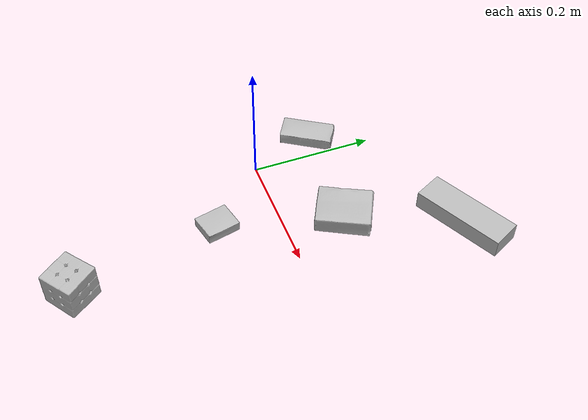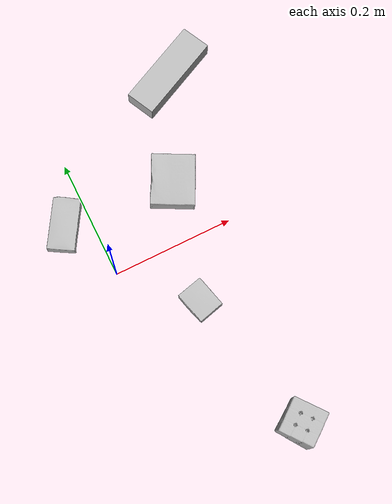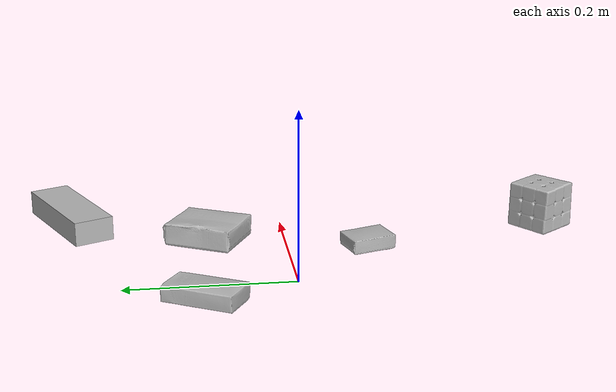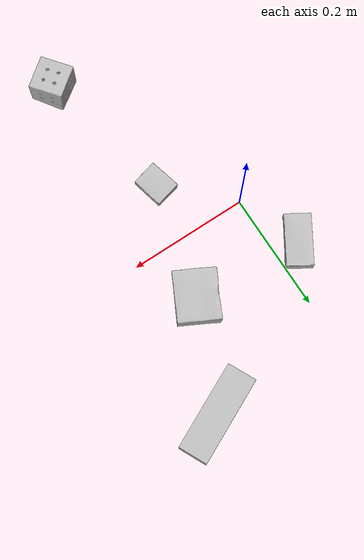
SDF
<sdf version="1.4">
  <world name="default">
    <light name="light1" type="point">
      <pose>0 0 1 0 0 0</pose>
      <diffuse>3 3 3 1</diffuse>
      <specular>3 3 3 1</specular>
    </light>
    <light name="light2" type="point">
      <pose>0 0.5 2 0 0 0</pose>
      <diffuse>1 1 1 1</diffuse>
      <specular>1 1 1 1</specular>
    </light>
    <light name="light3" type="point">
      <pose>0 0.5 2 0 0 0</pose>
      <diffuse>3 3 3 1</diffuse>
      <specular>3 3 3 1</specular>
    </light>
    <scene>
      <ambient>0.7 0.7 0.7</ambient>
    </scene>
    <model name="box1">
      <link name="link_box1">
        <collision name="default">
          <geometry>
            <mesh>
              <uri>model://sugar_box/collision_meshes/collision.obj</uri>
              <scale>0.5 0.5 0.5</scale>
            </mesh>
          </geometry>
          <surface>
            <friction>
              <ode>
                <mu>0.5</mu>
                <mu2>0.5</mu2>
              </ode>
            </friction>
          <contact>
        <ode>
            <max_vel>0</max_vel>
            <min_depth>0.0001</min_depth>
            <kp>1e8</kp>
        </ode>
    </contact></surface>
        </collision>
        <visual name="default">
          <geometry>
            <mesh>
              <uri>model://sugar_box/visual_meshes/visual.dae</uri>
              <scale>0.5 0.5 0.5</scale>
            </mesh>
          </geometry>
        </visual>
        <inertial>
          <mass>0.06211651861667633</mass>
          <pose>0.0005171863595023751 1.9245546354795806e-05 -0.00018182402709499002 -0.00040462630054681676 0.0010506634057476226 0.0026153787889456807</pose>
          <inertia>
            <ixx>1.2938825e-05</ixx>
            <iyy>4.1820942e-05</iyy>
            <izz>5.0064667e-05</izz>
            <ixy>0</ixy>
            <ixz>0</ixz>
            <iyz>0</iyz>
          </inertia>
        </inertial>
      </link>
      <pose>-0.04105877876281738 0.1077866181731224 0.011399304494261742 0.0007752741884313287 -0.023433240107461978 -2.1214211542745463</pose>
    </model>
    <model name="box2">
      <link name="link_box2">
        <collision name="default">
          <geometry>
            <mesh>
              <uri>model://rubiks_cube/collision_meshes/collision.obj</uri>
              <scale>1.0 1.0 1.0</scale>
            </mesh>
          </geometry>
          <surface>
            <friction>
              <ode>
                <mu>0.5</mu>
                <mu2>0.5</mu2>
              </ode>
            </friction>
          <contact>
        <ode>
            <max_vel>0</max_vel>
            <min_depth>0.0001</min_depth>
            <kp>1e8</kp>
        </ode>
    </contact></surface>
        </collision>
        <visual name="default">
          <geometry>
            <mesh>
              <uri>model://rubiks_cube/visual_meshes/visual.dae</uri>
              <scale>1.0 1.0 1.0</scale>
            </mesh>
          </geometry>
        </visual>
        <inertial>
          <mass>0.2700360119342804</mass>
          <pose>2.6721041649580002e-05 5.256967051536776e-05 -7.264316536748083e-06 -0.05467324422766238 -0.0981422115654675 -0.034454566623261795</pose>
          <inertia>
            <ixx>0.00014921304</ixx>
            <iyy>0.00014851718</iyy>
            <izz>0.00015044949</izz>
            <ixy>0</ixy>
            <ixz>0</ixz>
            <iyz>0</iyz>
          </inertia>
        </inertial>
      </link>
      <pose>0.14966124296188354 -0.3334393799304962 0.028678974136710167 -3.1446795052777677e-06 -9.2890863237743e-07 2.2154173384511244</pose>
    </model>
    <model name="box3">
      <link name="link_box3">
        <collision name="default">
          <geometry>
            <mesh>
              <uri>model://jenga/collision_meshes/collision.obj</uri>
              <scale>1.0 1.0 1.0</scale>
            </mesh>
          </geometry>
          <surface>
            <friction>
              <ode>
                <mu>0.5</mu>
                <mu2>0.5</mu2>
              </ode>
            </friction>
          <contact>
        <ode>
            <max_vel>0</max_vel>
            <min_depth>0.0001</min_depth>
            <kp>1e8</kp>
        </ode>
    </contact></surface>
        </collision>
        <visual name="default">
          <geometry>
            <mesh>
              <uri>model://jenga/visual_meshes/visual.dae</uri>
              <scale>1.0 1.0 1.0</scale>
            </mesh>
          </geometry>
        </visual>
        <inertial>
          <mass>0.12586519122123718</mass>
          <pose>-2.502855807051674e-07 -0.00010250010382151231 -4.0923401684267446e-05 0.0 -7.342154049184251e-07 0.0</pose>
          <inertia>
            <ixx>3.482995e-05</ixx>
            <iyy>0.0002360068</iyy>
            <izz>0.00025195733</izz>
            <ixy>0</ixy>
            <ixz>0</ixz>
            <iyz>0</iyz>
          </inertia>
        </inertial>
      </link>
      <pose>0.22277553379535675 0.2679692208766937 0.01499999687075615 2.1000442092727243e-08 -1.0016133805435987e-09 0.4505064731839955</pose>
    </model>
    <model name="box4">
      <link name="link_box4">
        <collision name="default">
          <geometry>
            <mesh>
              <uri>model://gelatin_box/collision_meshes/collision.obj</uri>
              <scale>1.0 1.0 1.0</scale>
            </mesh>
          </geometry>
          <surface>
            <friction>
              <ode>
                <mu>0.5</mu>
                <mu2>0.5</mu2>
              </ode>
            </friction>
          <contact>
        <ode>
            <max_vel>0</max_vel>
            <min_depth>0.0001</min_depth>
            <kp>1e8</kp>
        </ode>
    </contact></surface>
        </collision>
        <visual name="default">
          <geometry>
            <mesh>
              <uri>model://gelatin_box/visual_meshes/visual.dae</uri>
              <scale>1.0 1.0 1.0</scale>
            </mesh>
          </geometry>
        </visual>
        <inertial>
          <mass>0.0925464928150177</mass>
          <pose>0.0004319618456065655 0.00011156871914863586 -0.0003640321083366871 -0.0010503719798216618 -0.004755819622564704 0.01644055760929568</pose>
          <inertia>
            <ixx>6.533027e-05</ixx>
            <iyy>4.6665074e-05</iyy>
            <izz>9.9447236e-05</izz>
            <ixy>0</ixy>
            <ixz>0</ixz>
            <iyz>0</iyz>
          </inertia>
        </inertial>
      </link>
      <pose>0.14675752818584442 0.09554172307252884 0.015168314799666405 0.005596670640676931 -0.007303729065127473 2.654765015891123</pose>
    </model>
    <model name="box5">
      <link name="link_box5">
        <collision name="default">
          <geometry>
            <mesh>
              <uri>model://pudding_box/collision_meshes/collision.obj</uri>
              <scale>0.5 0.5 0.5</scale>
            </mesh>
          </geometry>
          <surface>
            <friction>
              <ode>
                <mu>0.5</mu>
                <mu2>0.5</mu2>
              </ode>
            </friction>
          <contact>
        <ode>
            <max_vel>0</max_vel>
            <min_depth>0.0001</min_depth>
            <kp>1e8</kp>
        </ode>
    </contact></surface>
        </collision>
        <visual name="default">
          <geometry>
            <mesh>
              <uri>model://pudding_box/visual_meshes/visual.dae</uri>
              <scale>0.5 0.5 0.5</scale>
            </mesh>
          </geometry>
        </visual>
        <inertial>
          <mass>0.0266704261302948</mass>
          <pose>0.00024474109522998333 0.00040339428232982755 -0.0002594413817860186 0.005213101812636465 -0.006603797316727521 0.020079823300208206</pose>
          <inertia>
            <ixx>7.5373864e-06</ixx>
            <iyy>5.0712065e-06</iyy>
            <izz>1.113092e-05</izz>
            <ixy>0</ixy>
            <ixz>0</ixz>
            <iyz>0</iyz>
          </inertia>
        </inertial>
      </link>
      <pose>0.09887465089559555 -0.09772733598947525 0.009862907230854034 0.022348462928850437 -0.01139182005853266 -2.8980290221806895</pose>
    </model>
  <physics type="ode">
      <max_contacts>50</max_contacts>
      <ode>
        <solver>
          <type>quick</type>
          <iters>75</iters>
        </solver>
        <constraints>
          <contact_max_correcting_vel>0</contact_max_correcting_vel>
          <contact_surface_layer>0</contact_surface_layer>
        </constraints>
      </ode>
    </physics></world>
</sdf>
